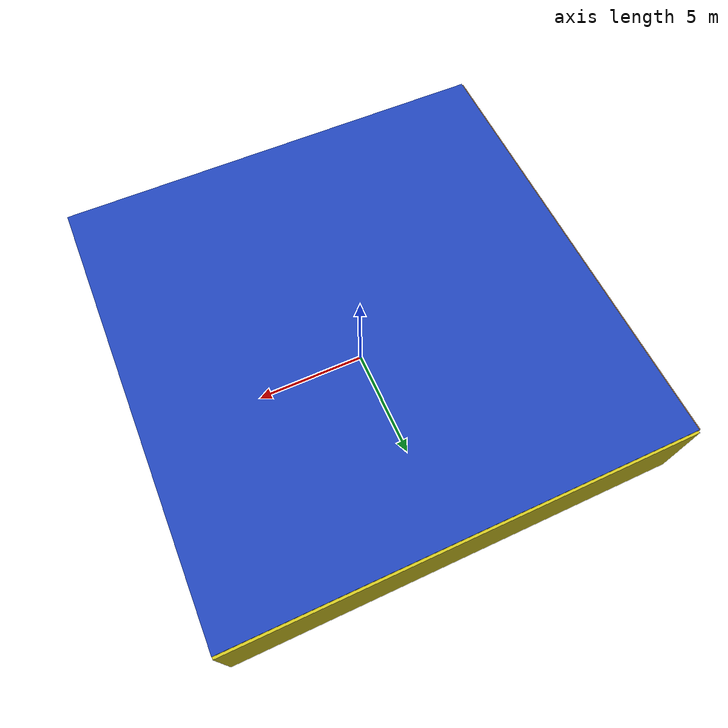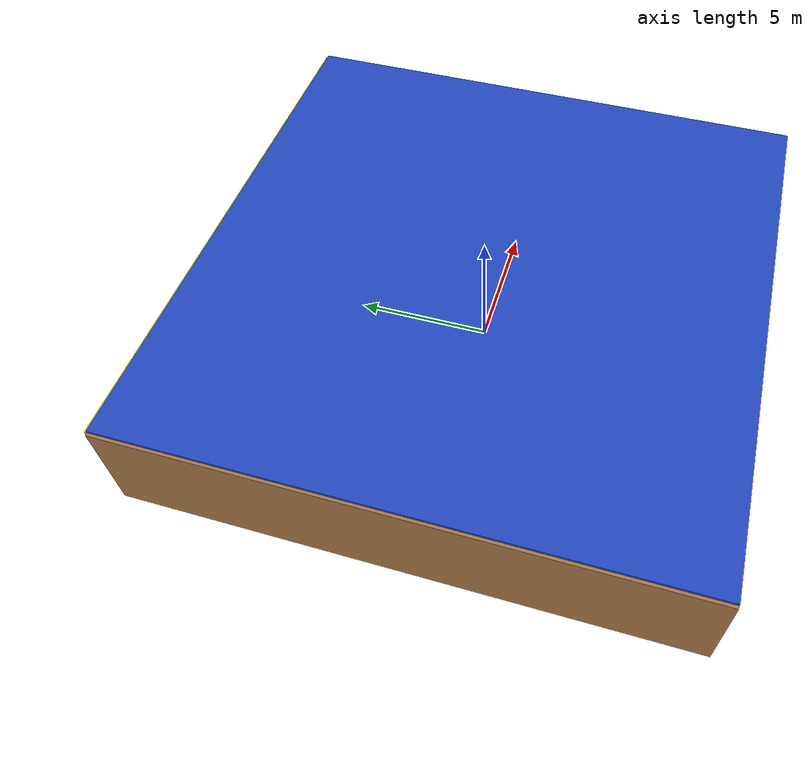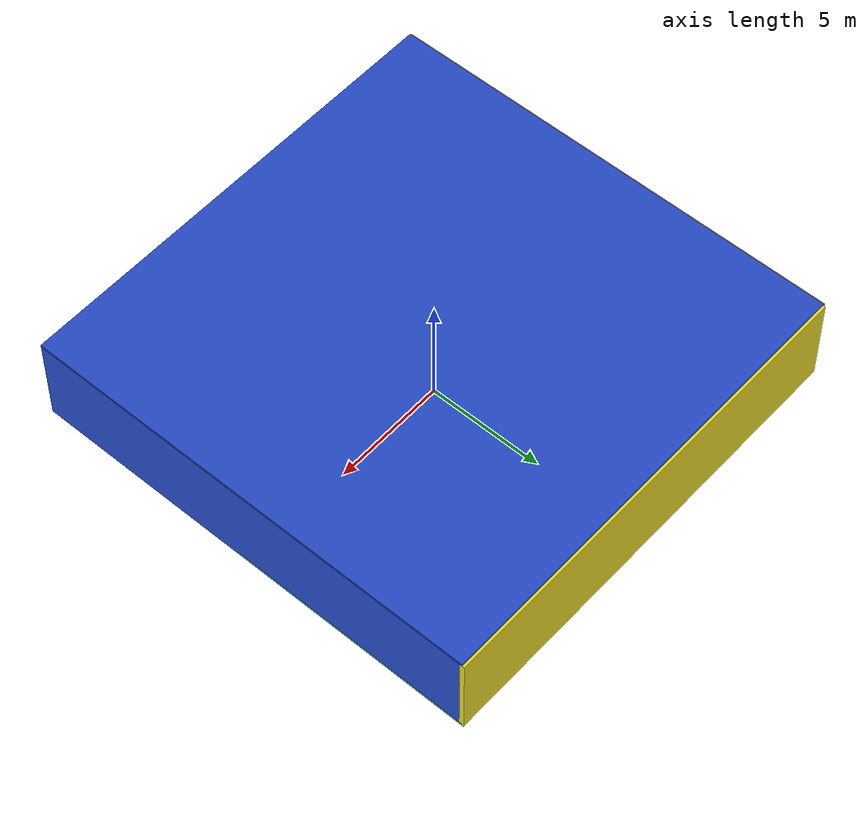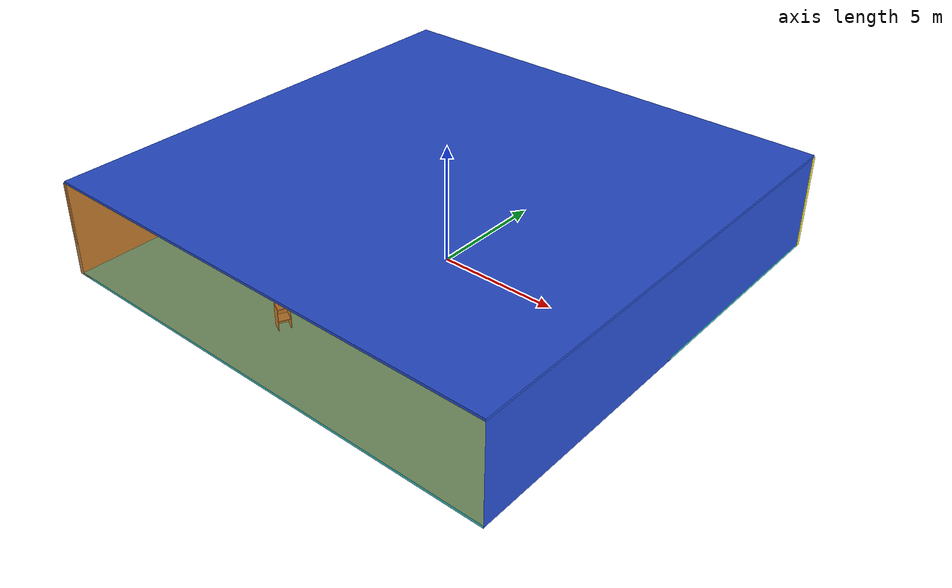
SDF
<sdf version="1.4">
 <world name="default">
  <physics type="ode">
   <max_step_size>0.001</max_step_size>
   <real_time_factor>1</real_time_factor>
   <real_time_update_rate>1000</real_time_update_rate>
   <gravity>0 0 -9.8</gravity>
  </physics>
  <scene><ambient>0.4 0.4 0.4 1</ambient><background>0.7 0.7 0.7 1</background><shadows>1</shadows></scene>
  <model name="Surrounding">
   <static>1</static>
   <link name="Ceiling">
    <collision name="Ceiling_Collision"><geometry><box><size>20 20 0.1</size></box></geometry></collision>
    <visual name="Ceiling_Visual">
     <geometry><box><size>20 20 0.1</size></box></geometry>
     <material>
      <script><uri>file://media/materials/scripts/gazebo.material</uri><name>Gazebo/BlueLaser</name></script>
     </material>
    </visual>
    <pose>0 0 4.05 0 0 0</pose>
   </link>
   <link name="Wall_South">
    <collision name="Wall_South_Collision">
     <geometry><box><size>20 0 4</size></box></geometry>
     <pose>0 0 2 0 -0 0</pose>
    </collision>
    <visual name="Wall_South_Visual">
     <pose>0 0 2 0 -0 0</pose>
     <geometry><box><size>20 0 4</size></box></geometry>
     <material>
      <script>
       <uri>file://media/materials/scripts/gazebo.material</uri>
       <name>Gazebo/OrangeTransparent</name>
      </script>
     </material>
    </visual>
    <velocity_decay><linear>0</linear><angular>0</angular></velocity_decay>
    <pose>0 -10 0 0 -0 0</pose>
   </link>
   <link name="Wall_East">
    <collision name="Wall_21_Collision">
     <geometry><box><size>20 0 4</size></box></geometry>
     <pose>0 0 2 0 -0 0</pose>
    </collision>
    <visual name="Wall_21_Visual">
     <pose>0 0 2 0 -0 0</pose>
     <geometry><box><size>20 0 4</size></box></geometry>
     <material>
      <script><uri>file://media/materials/scripts/gazebo.material</uri><name>Gazebo/Blue</name></script>
     </material>
    </visual>
    <velocity_decay><linear>0</linear><angular>0</angular></velocity_decay>
    <pose>10 0 0 0 -0 1.5708</pose>
   </link>
   <link name="Wall_North">
    <collision name="Wall_22_Collision">
     <geometry><box><size>20 0.2 4</size></box></geometry>
     <pose>0 0 2 0 -0 0</pose>
    </collision>
    <visual name="Wall_22_Visual">
     <pose>0 0 2 0 -0 0</pose>
     <geometry><box><size>20 0.2 4</size></box></geometry>
     <material>
      <script><uri>file://media/materials/scripts/gazebo.material</uri><name>Gazebo/YellowGlow</name></script>
     </material>
    </visual>
    <velocity_decay><linear>0</linear><angular>0</angular></velocity_decay>
    <pose>0 10 0 0 -0 0</pose>
   </link>
   <link name="Wall_West">
    <collision name="Wall_23_Collision">
     <geometry><box><size>20 0.2 4</size></box></geometry>
     <pose>0 0 2 0 -0 0</pose>
    </collision>
    <visual name="Wall_23_Visual">
     <pose>0 0 2 0 -0 0</pose>
     <geometry><box><size>20 0.2 4</size></box></geometry>
     <material>
      <script><uri>file://media/materials/scripts/gazebo.material</uri><name>Gazebo/WoodPallet</name></script>
     </material>
    </visual>
    <velocity_decay><linear>0</linear><angular>0</angular></velocity_decay>
    <pose>-10 0 0 0 0 -1.5708</pose>
   </link>
   <link name="Ground_link">
    <collision name="collision">
     <pose>0 0 .05 0 -0 0</pose>
     <geometry><box><size>20 20 0.1</size></box></geometry>
    </collision>
    <visual name="visual">
     <pose>0 0 .05 0 -0 0</pose>
     <geometry><box><size>20 20 0.1</size></box></geometry>
     <material>
      <script><uri>file://media/materials/scripts/gazebo.material</uri><name>Gazebo/Turquoise</name></script>
     </material>
    </visual>
   </link>
   <static>1</static>
  </model>
  <spherical_coordinates>
   <surface_model>EARTH_WGS84</surface_model>
   <latitude_deg>0</latitude_deg>
   <longitude_deg>0</longitude_deg>
   <elevation>0</elevation>
   <heading_deg>0</heading_deg>
  </spherical_coordinates>
  <light name="lightball_0" type="diffuse">
   <diffuse>0.8 0.8 0.8 1</diffuse>
   <specular>0.2 0.2 0.2 1</specular>
   <attenuation>
    <range>100</range>
    <constant>0.7</constant>
    <linear>0.01</linear>
    <quadratic>0.001</quadratic>
   </attenuation>
   <direction>-0.5 0.1 -0.9</direction>
   <pose>0.842461236775 -8.55088251034 1.56927305421 0 0 0</pose>
  </light>
  <light name="lightball_1" type="diffuse">
   <diffuse>0.8 0.8 0.8 1</diffuse>
   <specular>0.2 0.2 0.2 1</specular>
   <attenuation>
    <range>100</range>
    <constant>0.7</constant>
    <linear>0.01</linear>
    <quadratic>0.001</quadratic>
   </attenuation>
   <direction>-0.5 0.1 -0.9</direction>
   <pose>-9.31871689941 -8.77454469569 3.30452429495 0 0 0</pose>
  </light>
  <light name="lightball_2" type="diffuse">
   <diffuse>0.8 0.8 0.8 1</diffuse>
   <specular>0.2 0.2 0.2 1</specular>
   <attenuation>
    <range>100</range>
    <constant>0.7</constant>
    <linear>0.01</linear>
    <quadratic>0.001</quadratic>
   </attenuation>
   <direction>-0.5 0.1 -0.9</direction>
   <pose>6.57158012198 4.14917810806 1.59998994531 0 0 0</pose>
  </light>
  <include><uri>model://cabinet</uri><pose>-4.88708506851 -5.49985601857 0 0 0 0.71310367114</pose></include>
  <include><uri>model://cabinet</uri><pose>-1.46479402435 -7.28272909823 0 0 0 2.67623829731</pose></include>
  <include><uri>model://cabinet</uri><pose>-1.02229145711 -1.47841201299 0 0 0 0.914510941779</pose></include>
  <include><uri>model://cabinet</uri><pose>6.48773100819 2.52491279688 0 0 0 2.30072169479</pose></include>
 </world>
</sdf>

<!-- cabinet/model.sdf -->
<sdf version="1.5">
  <model name="cabinet">
    <static>true</static>
    <link name="cabinet_bottom_plate">
      <inertial>
        <pose>0 0 -1 0 0 0</pose>
        <inertia>
          <ixx>2.050000</ixx>
          <ixy>0</ixy>
          <ixz>0</ixz>
          <iyy>2.050000</iyy>
          <iyz>0</iyz>
          <izz>2.050000</izz>
        </inertia>
        <mass>25.000000</mass>
      </inertial>
      <collision name="cabinet_bottom_plate_geom">
        <pose>0 0 0.010000 0 0 0</pose>
        <geometry>
          <box>
            <size>0.450000 0.450000 0.020000</size>
          </box>
        </geometry>
      </collision>
      <visual name="cabinet_bottom_plate_geom_visual">
        <pose>0 0 0.010000 0 0 0</pose>
        <geometry>
          <box>
            <size>0.450000 0.450000 0.020000</size>
          </box>
        </geometry>
        <material>
          <script>
            <uri>model://media/materials/scripts/gazebo.material</uri>
            <name>Gazebo/Wood</name>
          </script>
        </material>
      </visual>
      <collision name="cabinet_bottom_plate_geom_cabinet_back_plate">
        <pose>0.235000 0 0.510000 0 0 0</pose>
        <geometry>
          <box>
            <size>0.020000 0.450000 1.020000</size>
          </box>
        </geometry>
      </collision>
      <visual name="cabinet_bottom_plate_geom_cabinet_back_plate_visual">
        <pose>0.235000 0 0.510000 0 0 0</pose>
        <geometry>
          <box>
            <size>0.020000 0.450000 1.020000</size>
          </box>
        </geometry>
        <material>
          <script>
            <uri>model://media/materials/scripts/gazebo.material</uri>
            <name>Gazebo/Wood</name>
          </script>
        </material>
      </visual>
      <collision name="cabinet_bottom_plate_geom_cabinet_left_plate">
        <pose>0 0.235000 0.510000 0 0 0</pose>
        <geometry>
          <box>
            <size>0.450000 0.020000 1.020000</size>
          </box>
        </geometry>
      </collision>
      <visual name="cabinet_bottom_plate_geom_cabinet_left_plate_visual">
        <pose>0 0.235000 0.510000 0 0 0</pose>
        <geometry>
          <box>
            <size>0.450000 0.020000 1.020000</size>
          </box>
        </geometry>
        <material>
          <script>
            <uri>model://media/materials/scripts/gazebo.material</uri>
            <name>Gazebo/Wood</name>
          </script>
        </material>
      </visual>
      <collision name="cabinet_bottom_plate_geom_cabinet_middle_plate">
        <pose>0 0 0.510000 0 0 0</pose>
        <geometry>
          <box>
            <size>0.450000 0.450000 0.020000</size>
          </box>
        </geometry>
      </collision>
      <visual name="cabinet_bottom_plate_geom_cabinet_middle_plate_visual">
        <pose>0 0 0.510000 0 0 0</pose>
        <geometry>
          <box>
            <size>0.450000 0.450000 0.020000</size>
          </box>
        </geometry>
        <material>
          <script>
            <uri>model://media/materials/scripts/gazebo.material</uri>
            <name>Gazebo/Wood</name>
          </script>
        </material>
      </visual>
      <collision name="cabinet_bottom_plate_geom_cabinet_right_plate">
        <pose>0 -0.235000 0.510000 0 0 0</pose>
        <geometry>
          <box>
            <size>0.450000 0.020000 1.020000</size>
          </box>
        </geometry>
      </collision>
      <visual name="cabinet_bottom_plate_geom_cabinet_right_plate_visual">
        <pose>0 -0.235000 0.510000 0 0 0</pose>
        <geometry>
          <box>
            <size>0.450000 0.020000 1.020000</size>
          </box>
        </geometry>
        <material>
          <script>
            <uri>model://media/materials/scripts/gazebo.material</uri>
            <name>Gazebo/Wood</name>
          </script>
        </material>
      </visual>
      <collision name="cabinet_bottom_plate_geom_cabinet_top_plate">
        <pose>0 0 1.010000 0 0 0</pose>
        <geometry>
          <box>
            <size>0.450000 0.450000 0.020000</size>
          </box>
        </geometry>
      </collision>
      <visual name="cabinet_bottom_plate_geom_cabinet_top_plate_visual">
        <pose>0 0 1.010000 0 0 0</pose>
        <geometry>
          <box>
            <size>0.450000 0.450000 0.020000</size>
          </box>
        </geometry>
        <material>
          <script>
            <uri>model://media/materials/scripts/gazebo.material</uri>
            <name>Gazebo/Wood</name>
          </script>
        </material>
      </visual>
    </link>
  </model>
</sdf>
